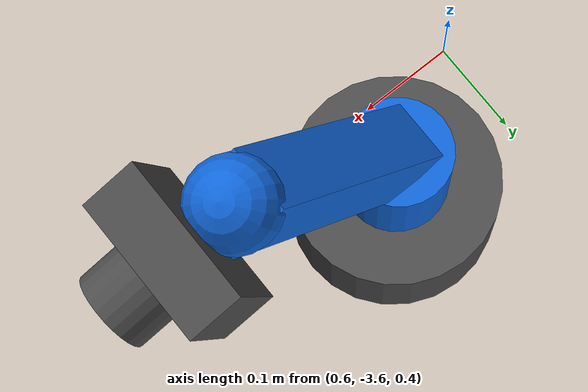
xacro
<?xml version="1.0"?>
<robot name="foxglove_arm" xmlns:xacro="http://ros.org/wiki/xacro">
  <xacro:include filename="$(find fg_gazebo_example)/urdf/camera_macro.xacro" />

  <xacro:property name="podest_height" value="0.1" />

  <!-- arm_x: table is 1.0m long in X (see arm_table_top in foxglove_demo.sdf);
       sit 0.25 table-lengths back from center so the wrist camera has a clearer
       look at the Foxglove box toward +X. -->
  <xacro:property name="arm_x" value="0.75" />
  <xacro:property name="arm_y" value="-3.5" />
  <xacro:property name="arm_z" value="0.5" />

  <material name="fg_blue">
    <color rgba="0.06 0.4 0.85 1.0" />
  </material>

  <link name="world" />

  <joint name="world_joint" type="fixed">
    <parent link="world" />
    <child link="podest" />
    <origin xyz="${arm_x} ${arm_y} ${arm_z + podest_height/2}" rpy="0 0 0" />
  </joint>

  <!-- Small podest so the arm isn't floating at the origin -->
  <link name="podest">
    <visual>
      <origin xyz="0 0 ${-podest_height / 2}" rpy="0 0 0" />
      <geometry>
        <cylinder radius="0.1" length="${podest_height}" />
      </geometry>
      <material name="darkgrey" />
    </visual>
    <collision>
      <origin xyz="0 0 ${-podest_height / 2}" rpy="0 0 0" />
      <geometry>
        <cylinder radius="0.1" length="${podest_height}" />
      </geometry>
    </collision>
    <inertial>
      <mass value="2.0" />
      <origin xyz="0 0 0" />
      <inertia ixx="0.01" ixy="0" ixz="0" iyy="0.01" iyz="0" izz="0.01" />
    </inertial>
  </link>
  <gazebo reference="podest">
    <material>Gazebo/DarkGrey</material>
  </gazebo>

  <!-- Shoulder pan (yaw) -->
  <joint name="shoulder_pan_joint" type="revolute">
    <parent link="podest" />
    <child link="shoulder_link" />
    <origin xyz="0 0 0" rpy="0 0 0" />
    <axis xyz="0 0 1" />
    <limit lower="-3.14" upper="3.14" effort="20" velocity="1.0" />
  </joint>

  <link name="shoulder_link">
    <visual>
      <origin xyz="0 0 0.05" rpy="0 0 0" />
      <geometry>
        <cylinder radius="0.05" length="0.1" />
      </geometry>
      <material name="fg_blue" />
    </visual>
    <collision>
      <origin xyz="0 0 0.05" rpy="0 0 0" />
      <geometry>
        <cylinder radius="0.05" length="0.1" />
      </geometry>
    </collision>
    <inertial>
      <mass value="0.5" />
      <origin xyz="0 0 0.05" />
      <inertia ixx="0.001" ixy="0" ixz="0" iyy="0.001" iyz="0" izz="0.001" />
    </inertial>
  </link>

  <joint name="shoulder_tilt_joint" type="revolute">
    <parent link="shoulder_link" />
    <child link="upper_arm_link" />
    <origin xyz="0 0 0.1" rpy="0 0.6 0" />
    <axis xyz="0 1 0" />
    <limit lower="-1.57" upper="1.57" effort="20" velocity="1.0" />
  </joint>

  <link name="upper_arm_link">
    <visual>
      <origin xyz="0 0 0.15" rpy="0 0 0" />
      <geometry>
        <box size="0.06 0.06 0.3" />
      </geometry>
      <material name="fg_blue" />
    </visual>
    <collision>
      <origin xyz="0 0 0.15" rpy="0 0 0" />
      <geometry>
        <box size="0.06 0.06 0.3" />
      </geometry>
    </collision>
    <inertial>
      <mass value="0.4" />
      <origin xyz="0 0 0.15" />
      <inertia ixx="0.002" ixy="0" ixz="0" iyy="0.002" iyz="0" izz="0.0005" />
    </inertial>
  </link>

  <!-- Wrist tilt (pitch); baked -0.3 rad angles the wrist camera slightly back down toward the scene -->
  <joint name="wrist_tilt_joint" type="revolute">
    <parent link="upper_arm_link" />
    <child link="wrist_link" />
    <origin xyz="0 0 0.3" rpy="0 -0.3 0" />
    <axis xyz="0 1 0" />
    <limit lower="-1.9" upper="1.9" effort="10" velocity="1.0" />
  </joint>

  <link name="wrist_link">
    <visual>
      <geometry>
        <sphere radius="0.04" />
      </geometry>
      <material name="fg_blue" />
    </visual>
    <collision>
      <geometry>
        <sphere radius="0.04" />
      </geometry>
    </collision>
    <inertial>
      <mass value="0.2" />
      <origin xyz="0 0 0" />
      <inertia ixx="0.0002" ixy="0" ixz="0" iyy="0.0002" iyz="0" izz="0.0002" />
    </inertial>
  </link>

  <xacro:fg_camera name="wrist_camera" camera_type="rgbd_camera" parent="wrist_link" far_clip="8.0">
    <origin xyz="0.09 0 0" rpy="0 0 0" />
  </xacro:fg_camera>

  <xacro:macro name="fg_joint_position_controller" params="joint_name">
    <gazebo>
      <plugin filename="gz-sim-joint-position-controller-system"
              name="gz::sim::systems::JointPositionController">
        <joint_name>${joint_name}</joint_name>
        <topic>${joint_name}/cmd_pos</topic>
        <p_gain>15</p_gain>
        <i_gain>0.1</i_gain>
        <d_gain>1.0</d_gain>
        <i_max>1</i_max>
        <i_min>-1</i_min>
        <cmd_max>10</cmd_max>
        <cmd_min>-10</cmd_min>
        <initial_position>0</initial_position>
      </plugin>
    </gazebo>
  </xacro:macro>

  <xacro:fg_joint_position_controller joint_name="shoulder_pan_joint" />
  <xacro:fg_joint_position_controller joint_name="shoulder_tilt_joint" />
  <xacro:fg_joint_position_controller joint_name="wrist_tilt_joint" />

  <!-- Publishes joint_state so robot_state_publisher can compute moving-joint TF -->
  <gazebo>
    <plugin filename="gz-sim-joint-state-publisher-system"
            name="gz::sim::systems::JointStatePublisher">
    </plugin>
  </gazebo>
</robot>

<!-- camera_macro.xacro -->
<robot xmlns:xacro="http://ros.org/wiki/xacro">
  <material name="darkgrey">
    <color rgba="0.3 0.3 0.3 1.0" />
  </material>

  <xacro:macro name="fg_camera" params="name camera_type parent far_clip:=1.2 fov:=1.047 *origin">
    <joint name="${name}_joint" type="fixed">
      <xacro:insert_block name="origin" />
      <parent link="${parent}" />
      <child link="${name}_link" />
    </joint>

    <link name="${name}_link">
      <visual>
        <origin xyz="0 0 0" rpy="0 ${pi/2} 0" />
        <geometry>
          <cylinder radius="0.035" length="0.07" />
        </geometry>
        <material name="darkgrey" />
      </visual>
      <visual>
        <origin xyz="-0.035 0 0" rpy="0 0 0" />
        <geometry>
          <box size="0.05 0.13 0.09" />
        </geometry>
        <material name="darkgrey" />
      </visual>
      <collision>
        <origin xyz="0 0 0" rpy="0 ${pi/2} 0" />
        <geometry>
          <cylinder radius="0.035" length="0.07" />
        </geometry>
      </collision>
      <inertial>
        <mass value="0.05" />
        <origin xyz="0 0 0" />
        <inertia ixx="1e-5" ixy="0" ixz="0" iyy="1e-5" iyz="0" izz="1e-5" />
      </inertial>
    </link>

    <joint name="${name}_optical_joint" type="fixed">
      <origin xyz="0 0 0" rpy="${-pi/2} 0 ${-pi/2}" />
      <parent link="${name}_link" />
      <child link="${name}_optical_frame" />
    </joint>
    <link name="${name}_optical_frame" />

    <gazebo reference="${name}_link">
      <material>Gazebo/DarkGrey</material>
      <sensor name="${name}" type="${camera_type}">
        <always_on>true</always_on>
        <update_rate>15</update_rate>
        <visualize>true</visualize>
        <topic>${name}</topic>
        <gz_frame_id>${name}_optical_frame</gz_frame_id>
        <camera>
          <horizontal_fov>${fov}</horizontal_fov>
          <image>
            <width>640</width>
            <height>480</height>
          </image>
          <clip>
            <near>0.05</near>
            <far>${far_clip}</far>
          </clip>
        </camera>
      </sensor>
    </gazebo>
  </xacro:macro>
</robot>
